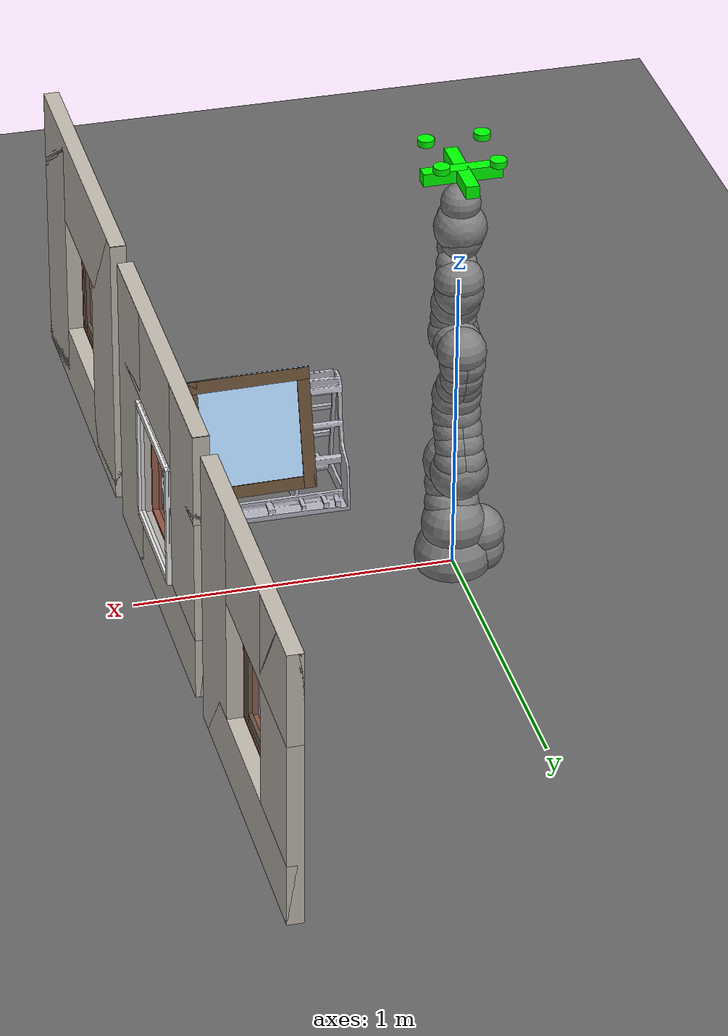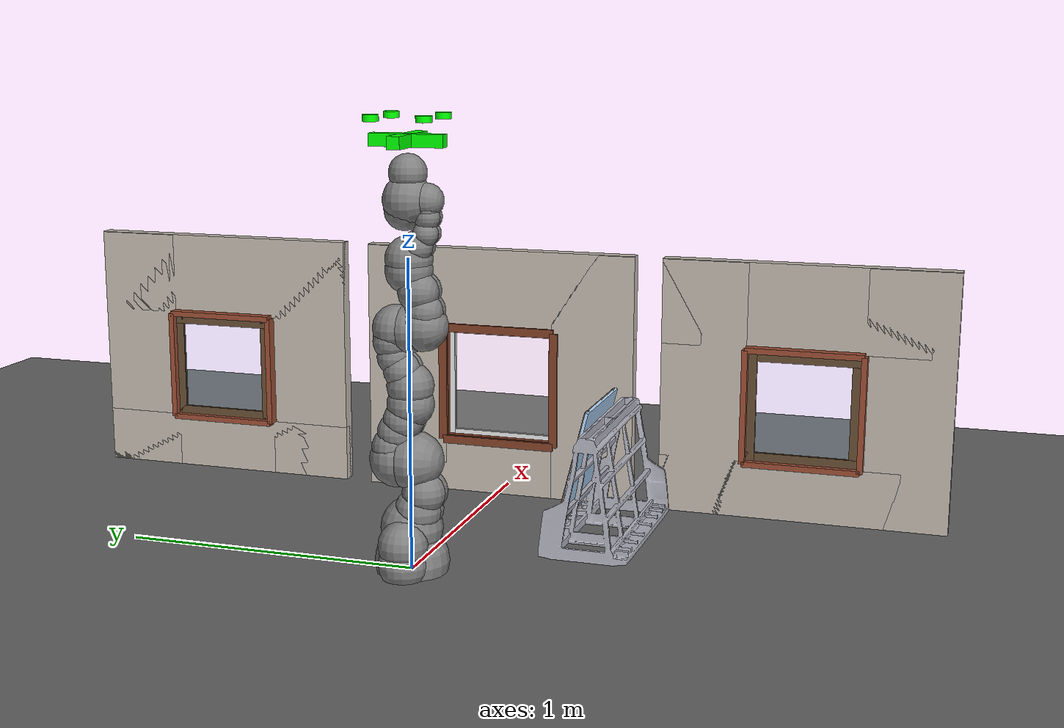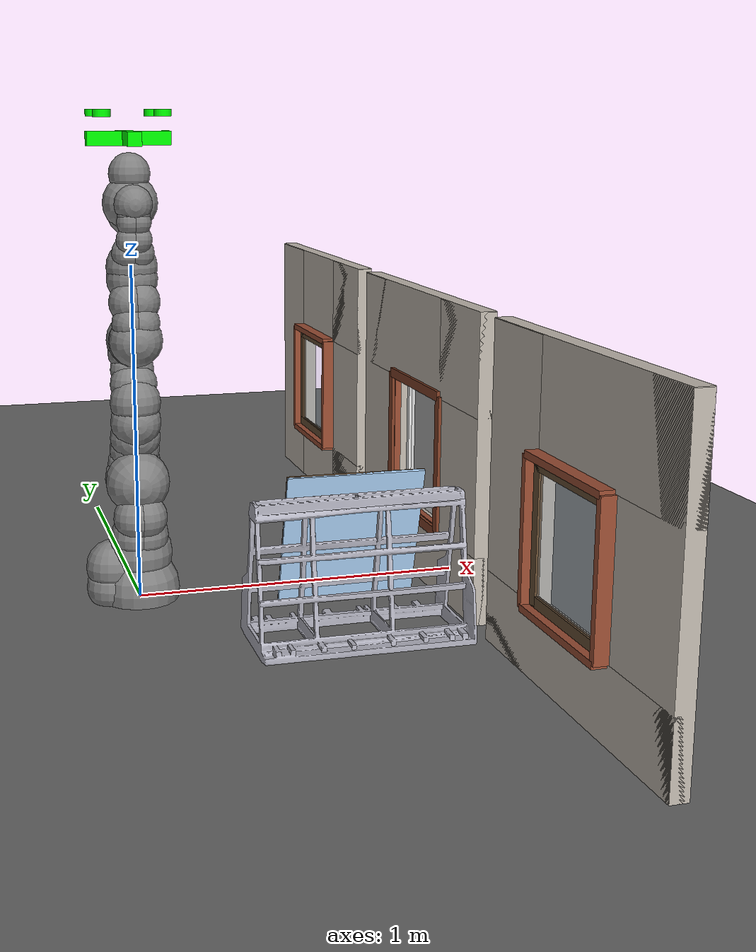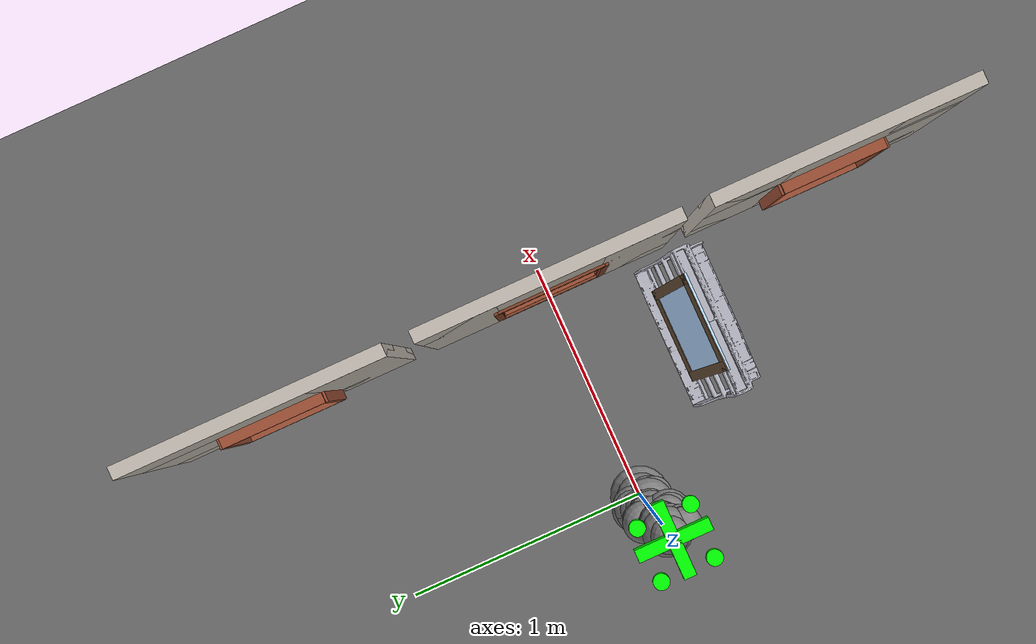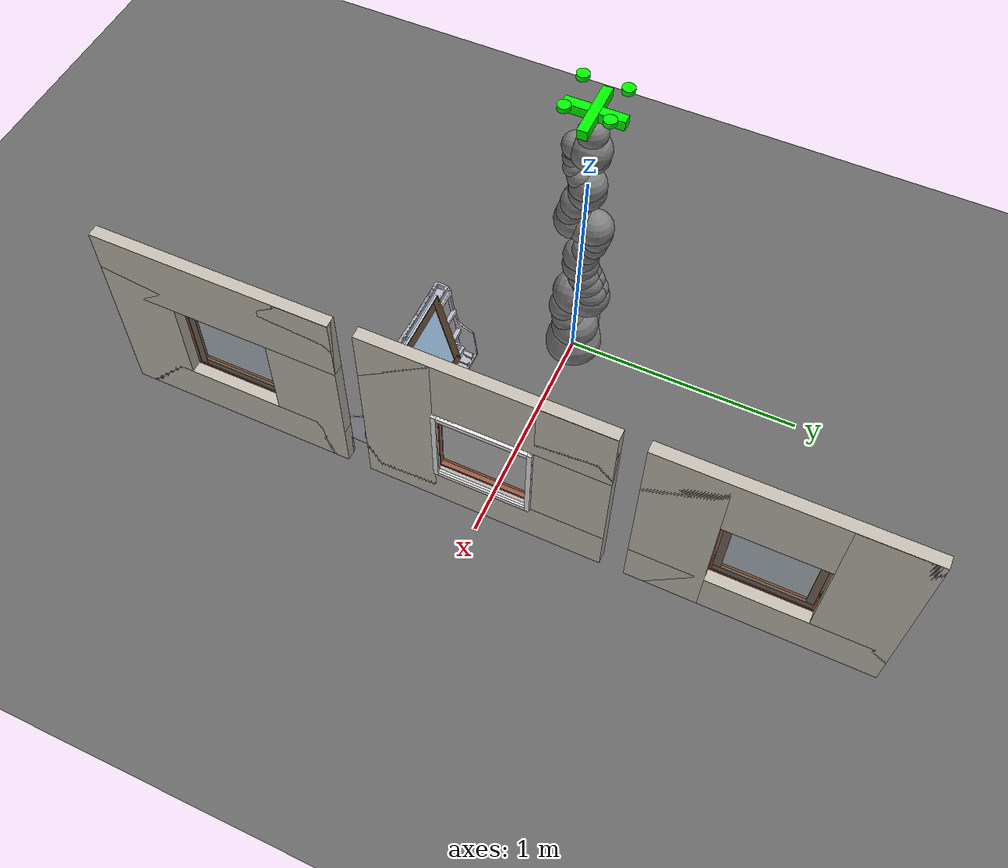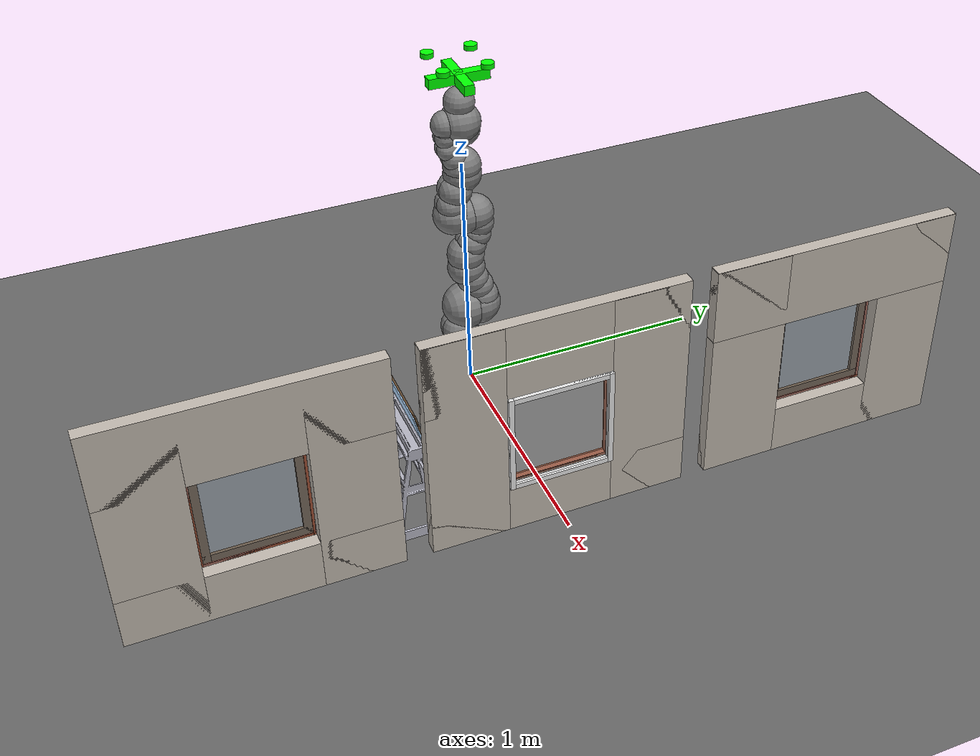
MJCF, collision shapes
<?xml version="1.0" ?>
<mujoco model="kuka_window_assembly_scene_full_ood">
    <include file="kuka_vacuum.xml"/>
    <compiler texturedir="images"/>
    <option timestep=".001" noslip_iterations="50" noslip_tolerance="0" impratio="100" cone="elliptic"/>
    <statistic center="0.4 0 0.4" extent=".8"/>
    <visual>
      <headlight diffuse=".4 .4 .4" ambient=".5 .5 .5"/>
      <global azimuth="160" elevation="-20" offheight="512" offwidth="512"/>
      <quality offsamples="8"/>
    </visual>
    <asset>
      <mesh name="wall_with_hole" file="meshes/wall_with_hole_thick.obj" scale="0.801587 1 0.801587"/>
      <mesh name="glass_rack" file="meshes/A_frame_glass_rack/object_1.obj" scale="0.6 0.6 0.6"/>
      <texture name="concrete_tex" type="2d" file="concrete.png"/>
      <texture name="skybox" type="skybox" gridsize="3 4" gridlayout=".U..LFRB.D.." file="dawn.png"/>
      <texture name="grid" type="2d" builtin="checker" width="512" height="512" rgb1=".1 .2 .3" rgb2=".2 .3 .4"/>
      <texture name="concrete_floor_tex" type="2d" file="white_marble_tile2.png"/>
      <material name="concrete_mat" texture="concrete_tex" texrepeat="3 3" texuniform="false" reflectance="0.05" shininess="0.05" specular="0.05"/>
      <material name="grid" texture="grid" texrepeat="2 2" texuniform="true" reflectance="0"/>
      <material name="concrete_floor_mat" texture="concrete_floor_tex" texrepeat="4 4" texuniform="true" reflectance="0" shininess="0" specular="0"/>
      <material name="glass_mat" rgba="0.7 0.85 1.0 0.2" shininess="0.2" reflectance="0.1" specular="0.15"/>
      <material name="frame_mat" rgba="0.2 0.2 0.2 1" shininess="0.1"/>
      <material name="window_frame_mat" rgba="0.6 0.3 0.2 1" shininess="0.3" reflectance="0.2"/>
      <material name="rack_mat" rgba="1.0 1.0 1.0 1" shininess="0.1" specular="0.05" reflectance="0"/>
      <material name="metal_mat" rgba="0.7 0.7 0.75 1" shininess="0.8" specular="0.3" reflectance="0.2"/>
    </asset>
    <keyframe>
        <key name="home" qpos="0 0.785398 0 -1.5708 0 0.785398 0 0.514000 -0.432000 0.273000 0.786852 -0.617125 0.003272 0.003239"/>
    </keyframe>

    <worldbody>
      <camera name="front" pos="-0.130 0.970 0.630" quat="0.283195 0.191929 -0.548091 -0.763256" fovy="50"/>
      <camera name="track" pos="-0.130 -0.800 0.900" quat="0.832262 0.448649 -0.162592 -0.282167" fovy="50"/>
      <light pos="0 0 3" dir="0 0 -1" diffuse="1 1 1" specular=".3 .3 .3"/>
      <light pos="0 -.5 .4" mode="targetbodycom" target="window_body" diffuse=".8 .8 .8" specular=".3 .3 .3"/>
      <geom name="floor" size="3 3 0.01" type="plane" material="concrete_floor_mat"
            rgba="0.4 0.4 0.4 1"
            contype="1" conaffinity="1"
            solimp="0.99 0.99 0.01" solref="0.002 1" friction="5 5 5"/>

      <body name="window_body" pos="0.532000 -0.432000 0.273000" quat="0.786852 -0.617125 0.003272 0.003239">
        <freejoint name="window_joint"/>
        <geom name="window_collision" type="box" size="0.197500 0.197500 0.005" mass="0.063677" material="glass_mat"
              contype="1" conaffinity="1" priority="1"
              solimp="0.9 0.95 0.001" solref="0.01 1" friction="5 5 5" condim="6"/>
        <geom name="visual_frame_top" type="box" size="0.197500 0.02 0.004" pos="0 0.177500 0.004" material="frame_mat" rgba="0.4 0.3 0.2 1" contype="0" conaffinity="0"/>
        <geom name="visual_frame_bottom" type="box" size="0.197500 0.02 0.004" pos="0 -0.177500 0.004" material="frame_mat" rgba="0.4 0.3 0.2 1" contype="0" conaffinity="0"/>
        <geom name="visual_frame_left" type="box" size="0.02 0.197500 0.004" pos="-0.177500 0 0.004" material="frame_mat" rgba="0.4 0.3 0.2 1" contype="0" conaffinity="0"/>
        <geom name="visual_frame_right" type="box" size="0.02 0.197500 0.004" pos="0.177500 0 0.004" material="frame_mat" rgba="0.4 0.3 0.2 1" contype="0" conaffinity="0"/>
        <geom name="visual_glass" type="box" size="0.157500 0.157500 0.001" pos="0 0 0.003" material="glass_mat" rgba="0.7 0.85 1.0 0.2" contype="0" conaffinity="0"/>
        <site name="window_grasp_site" pos="0 0 0" size="0.02" rgba="1 0 0 0"/>
      </body>

      <body name="facade_wall" pos="0.9 0 0.4" quat="0.707 0 0 0.707">

        <geom name="wall_left" type="box" size="0.15 0.025 0.5" pos="-0.352000 0 0" material="concrete_mat"
              contype="1" conaffinity="1"
              solimp="0.9 0.95 0.001" solref="0.002 1" friction="5 5 5" condim="6" />
        <geom name="wall_right" type="box" size="0.15 0.025 0.5" pos="0.352000 0 0" material="concrete_mat"
              contype="1" conaffinity="1"
              solimp="0.9 0.95 0.001" solref="0.002 1" friction="5 5 5" condim="6" />
        <geom name="wall_top" type="box" size="0.502000 0.025 0.15" pos="0 0 0.352000" material="concrete_mat"
              contype="1" conaffinity="1"
              solimp="0.9 0.95 0.001" solref="0.002 1" friction="5 5 5" condim="6" />
        <geom name="wall_bottom" type="box" size="0.502000 0.025 0.15" pos="0 0 -0.352000" material="concrete_mat"
              contype="1" conaffinity="1"
              solimp="0.9 0.95 0.001" solref="0.002 1" friction="5 5 5" condim="6" />
        <geom name="wall_visual_mesh" type="mesh" mesh="wall_with_hole"
          pos="0 0.026000 0"
          material="concrete_mat"
          contype="0" conaffinity="0" density="0"/>

        <geom name="wall_back_left" type="box" size="0.01 0.01 0.202000" pos="-0.192000 -0.03 0" material="frame_mat" rgba="0.9 0.9 0.9 0.1"
              contype="1" conaffinity="1"
              solimp="0.9 0.95 0.001" solref="0.002 1" friction="5 5 5" condim="6"/>
        <geom name="wall_back_right" type="box" size="0.01 0.01 0.202000" pos="0.192000 -0.03 0" material="frame_mat" rgba="0.9 0.9 0.9 0.1"
              contype="1" conaffinity="1"
              solimp="0.9 0.95 0.001" solref="0.002 1" friction="5 5 5" condim="6"/>
        <geom name="wall_back_top" type="box" size="0.182000 0.01 0.01" pos="0 -0.03 0.192000" material="frame_mat" rgba="0.9 0.9 0.9 0.1"
              contype="1" conaffinity="1"
              solimp="0.9 0.95 0.001" solref="0.002 1" friction="5 5 5" condim="6"/>
        <geom name="wall_back_bottom" type="box" size="0.182000 0.01 0.01" pos="0 -0.03 -0.192000" material="frame_mat" rgba="0.9 0.9 0.9 0.1"
              contype="1" conaffinity="1"
              solimp="0.9 0.95 0.001" solref="0.002 1" friction="5 5 5" condim="6"/>
        <geom name="wall_back_visual" type="box" size="0.202000 0.001 0.202000" pos="0 -0.03 0" material="frame_mat" rgba="0.9 0.9 0.9 0.05"
              contype="0" conaffinity="0"/>

        <geom name="frame_left" type="box" size="0.01 0.01 0.202000" pos="-0.202000 0.015 0" material="window_frame_mat" rgba="0.6 0.3 0.2 1" contype="0" conaffinity="0"/>
        <geom name="frame_right" type="box" size="0.01 0.01 0.202000" pos="0.202000 0.015 0" material="window_frame_mat" rgba="0.6 0.3 0.2 1" contype="0" conaffinity="0"/>
        <geom name="frame_top" type="box" size="0.202000 0.01 0.01" pos="0 0.015 0.202000" material="window_frame_mat" rgba="0.6 0.3 0.2 1" contype="0" conaffinity="0"/>
        <geom name="frame_bottom" type="box" size="0.202000 0.01 0.01" pos="0 0.015 -0.202000" material="window_frame_mat" rgba="0.6 0.3 0.2 1" contype="0" conaffinity="0"/>

        <geom name="frame_outer_left" type="box" size="0.015 0.015 0.210000" pos="-0.210000 0.02 0" material="window_frame_mat" rgba="0.5 0.25 0.15 1" contype="0" conaffinity="0"/>
        <geom name="frame_outer_right" type="box" size="0.015 0.015 0.210000" pos="0.210000 0.02 0" material="window_frame_mat" rgba="0.5 0.25 0.15 1" contype="0" conaffinity="0"/>
        <geom name="frame_outer_top" type="box" size="0.210000 0.015 0.015" pos="0 0.02 0.210000" material="window_frame_mat" rgba="0.5 0.25 0.15 1" contype="0" conaffinity="0"/>
        <geom name="frame_outer_bottom" type="box" size="0.210000 0.015 0.015" pos="0 0.02 -0.210000" material="window_frame_mat" rgba="0.5 0.25 0.15 1" contype="0" conaffinity="0"/>

        <site name="target_site" pos="0 0.02 0" size="0.01" rgba="0 1 0 0" type="sphere"/>
      </body>

      <body name="left_wall" pos="0.9 -1.104 0.4" quat="0.707 0 0 0.707">

        <geom name="left_wall_left" type="box" size="0.15 0.025 0.5" pos="-0.352000 0 0" material="concrete_mat" />
        <geom name="left_wall_right" type="box" size="0.15 0.025 0.5" pos="0.352000 0 0" material="concrete_mat" />
        <geom name="left_wall_top" type="box" size="0.502000 0.025 0.15" pos="0 0 0.352000" material="concrete_mat" />
        <geom name="left_wall_bottom" type="box" size="0.502000 0.025 0.15" pos="0 0 -0.352000" material="concrete_mat" />
        <geom name="left_wall_visual_mesh" type="mesh" mesh="wall_with_hole"
          pos="0 0.026000 0"
          material="concrete_mat"
          contype="0" conaffinity="0" density="0"/>

        <geom name="left_fin_glass" type="box" size="0.202000 0.005 0.202000" pos="0 0.03 0" material="glass_mat" contype="0" conaffinity="0"/>
        <geom name="left_fin_inner_frame_T" type="box" size="0.202000 0.006 0.02" pos="0 0.035 0.182000" material="frame_mat" rgba="0.4 0.3 0.2 1" contype="0" conaffinity="0"/>
        <geom name="left_fin_inner_frame_B" type="box" size="0.202000 0.006 0.02" pos="0 0.035 -0.182000" material="frame_mat" rgba="0.4 0.3 0.2 1" contype="0" conaffinity="0"/>
        <geom name="left_fin_inner_frame_L" type="box" size="0.02 0.006 0.202000" pos="-0.182000 0.035 0" material="frame_mat" rgba="0.4 0.3 0.2 1" contype="0" conaffinity="0"/>
        <geom name="left_fin_inner_frame_R" type="box" size="0.02 0.006 0.202000" pos="0.182000 0.035 0" material="frame_mat" rgba="0.4 0.3 0.2 1" contype="0" conaffinity="0"/>
        <geom name="l_fin_f_L" type="box" size="0.01 0.02 0.202000" pos="-0.202000 0.045 0" material="window_frame_mat" contype="0" conaffinity="0"/>
        <geom name="l_fin_f_R" type="box" size="0.01 0.02 0.202000" pos="0.202000 0.045 0" material="window_frame_mat" contype="0" conaffinity="0"/>
        <geom name="l_fin_f_T" type="box" size="0.202000 0.02 0.01" pos="0 0.045 0.202000" material="window_frame_mat" contype="0" conaffinity="0"/>
        <geom name="l_fin_f_B" type="box" size="0.202000 0.02 0.01" pos="0 0.045 -0.202000" material="window_frame_mat" contype="0" conaffinity="0"/>

      </body>

      <body name="right_wall" pos="0.9 1.104 0.4" quat="0.707 0 0 0.707">

        <geom name="right_wall_left" type="box" size="0.15 0.025 0.5" pos="-0.352000 0 0" material="concrete_mat" />
        <geom name="right_wall_right" type="box" size="0.15 0.025 0.5" pos="0.352000 0 0" material="concrete_mat" />
        <geom name="right_wall_top" type="box" size="0.502000 0.025 0.15" pos="0 0 0.352000" material="concrete_mat" />
        <geom name="right_wall_bottom" type="box" size="0.502000 0.025 0.15" pos="0 0 -0.352000" material="concrete_mat" />
        <geom name="right_wall_visual_mesh" type="mesh" mesh="wall_with_hole"
          pos="0 0.026000 0"
          material="concrete_mat"
          contype="0" conaffinity="0" density="0"/>

        <geom name="right_fin_glass" type="box" size="0.202000 0.005 0.202000" pos="0 0.03 0" material="glass_mat" contype="0" conaffinity="0"/>
        <geom name="right_fin_inner_frame_T" type="box" size="0.202000 0.006 0.02" pos="0 0.035 0.182000" material="frame_mat" rgba="0.4 0.3 0.2 1" contype="0" conaffinity="0"/>
        <geom name="right_fin_inner_frame_B" type="box" size="0.202000 0.006 0.02" pos="0 0.035 -0.182000" material="frame_mat" rgba="0.4 0.3 0.2 1" contype="0" conaffinity="0"/>
        <geom name="right_fin_inner_frame_L" type="box" size="0.02 0.006 0.202000" pos="-0.182000 0.035 0" material="frame_mat" rgba="0.4 0.3 0.2 1" contype="0" conaffinity="0"/>
        <geom name="right_fin_inner_frame_R" type="box" size="0.02 0.006 0.202000" pos="0.182000 0.035 0" material="frame_mat" rgba="0.4 0.3 0.2 1" contype="0" conaffinity="0"/>
        <geom name="r_fin_f_L" type="box" size="0.01 0.02 0.202000" pos="-0.202000 0.045 0" material="window_frame_mat" contype="0" conaffinity="0"/>
        <geom name="r_fin_f_R" type="box" size="0.01 0.02 0.202000" pos="0.202000 0.045 0" material="window_frame_mat" contype="0" conaffinity="0"/>
        <geom name="r_fin_f_T" type="box" size="0.202000 0.02 0.01" pos="0 0.045 0.202000" material="window_frame_mat" contype="0" conaffinity="0"/>
        <geom name="r_fin_f_B" type="box" size="0.202000 0.02 0.01" pos="0 0.045 -0.202000" material="window_frame_mat" contype="0" conaffinity="0"/>

      </body>

      <body name="target" pos=".15 0 .5" quat="0 1 0 0" mocap="true">
        <geom name="target" type="box" size=".03 .03 .03" contype="0" conaffinity="0" rgba=".6 .3 .3 0"/>
      </body>
      <body name="glass_rack" pos="0.53 -0.5 0.2" quat="1 0 0 0">
        <geom name="glass_rack_visual" type="mesh" mesh="glass_rack"
              material="rack_mat"
              contype="0" conaffinity="0"/>
        <geom name="glass_rack_collision" type="mesh" mesh="glass_rack"
              material="metal_mat"
              contype="1" conaffinity="1"
              solimp="0.9 0.95 0.001" solref="0.002 1" friction="5 5 5" condim="6"/>
      </body>
    </worldbody>

    <contact>
      <exclude body1="window_body" body2="glass_rack"/>
    </contact>
    <sensor>
      <framepos name="window_pos" objtype="body" objname="window_body"/>
      <framequat name="window_quat" objtype="body" objname="window_body"/>
      <framepos name="target_pos" objtype="site" objname="target_site"/>
    </sensor>
</mujoco>

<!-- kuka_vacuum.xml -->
<mujoco model="kuka_vacuum">
  <compiler angle="radian" meshdir="kuka_iiwa_14/assets" autolimits="true"/>

  <option integrator="implicitfast"/>

  <default>
    <default class="iiwa">
      <material specular="0.5" shininess="0.25"/>
      <joint axis="0 0 1" armature="0.1" damping="1"/>
      <default class="joint1">
        <joint range="-2.96706 2.96706"/>
        <default class="joint2">
          <joint range="-2.0944 2.0944"/>
        </default>
      </default>
      <default class="joint3">
        <joint range="-3.05433 3.05433"/>
      </default>
      <default class="visual">
        <geom type="mesh" contype="0" conaffinity="0" group="2" material="gray"/>
      </default>
      <default class="collision">
        <geom group="3"/>
      </default>
      <site size="0.001" rgba="1 0 0 1" group="4"/>
    </default>

    <default class="vacuum_gripper">
      <default class="vacuum_gripper/visual">
         <geom contype="0" conaffinity="0" group="2"/>
      </default>
      <default class="vacuum_gripper/collision">
            <geom group="3" rgba="0 1 0 0.3" contype="1" conaffinity="1"
              condim="6" friction="10 10 10" margin="0.002"
              solimp="0.99 0.99 0.01" solref="0.004 1"/>
      </default>
    </default>
  </default>

  <asset>
    <material class="iiwa" name="gray" rgba="0.4 0.4 0.4 1"/>
    <material class="iiwa" name="light_gray" rgba="0.6 0.6 0.6 1"/>
    <material class="iiwa" name="black" rgba="0 0 0 1"/>
    <material class="iiwa" name="orange" rgba="1 0.423529 0.0392157 1"/>

    <material name="pp_black" rgba="0.1 0.1 0.1 1" specular="0.5" shininess="0.2"/>
    <material name="pp_green" rgba="0.0 0.6 0.3 1" specular="0.2" shininess="0.1"/>
    <material name="pp_yellow" rgba="0.95 0.8 0.1 1" specular="0.1" shininess="0.1"/>

    <mesh file="link_0.obj"/>
    <mesh file="link_1.obj"/>
    <mesh file="link_2_orange.obj"/>
    <mesh file="link_2_grey.obj"/>
    <mesh file="link_3.obj"/>
    <mesh file="band.obj"/>
    <mesh file="kuka.obj"/>
    <mesh file="link_4_orange.obj"/>
    <mesh file="link_4_grey.obj"/>
    <mesh file="link_5.obj"/>
    <mesh file="link_6_orange.obj"/>
    <mesh file="link_6_grey.obj"/>
    <mesh file="link_7.obj"/>

    <!-- PowerPick vacuum gripper meshes -->
    <!-- Note: meshdir is set to kuka_iiwa_14/assets, so paths are relative to that directory -->
    <!-- From kuka_iiwa_14/assets to assets/powerpick/meshes/pp30/ is ../../powerpick/meshes/pp30/ -->
    <mesh name="pp_frame" file="../../powerpick/meshes/pp30/frame_reduced.stl" scale="0.001 0.001 0.001"/>
    <mesh name="pp_bellows" file="../../powerpick/meshes/pp30/bellows.stl" scale="0.001 0.001 0.001"/>
    <mesh name="pp_lips" file="../../powerpick/meshes/pp30/lips.stl" scale="0.001 0.001 0.001"/>
  </asset>

  <worldbody>
    <light name="top" pos="0 0 2" mode="trackcom"/>
    <body name="base" childclass="iiwa">
      <inertial mass="5" pos="-0.1 0 0.07" diaginertia="0.05 0.06 0.03"/>
      <geom class="visual" mesh="link_0"/>
      <geom class="collision" size="0.12" pos="0 0 0.03"/>
      <geom class="collision" size="0.08" pos="-0.08 0 0.103"/>
      <geom class="collision" size="0.08" pos="-0.08 0 0.04"/>
      <geom class="collision" size="0.1" pos="0 0 0.14"/>
      <body name="link1" pos="0 0 0.1575">
        <inertial mass="5.76" pos="0 -0.03 0.12" diaginertia="0.0333 0.033 0.0123"/>
        <joint name="joint1" class="joint1"/>
        <site name="joint1"/>
        <geom class="visual" mesh="link_1"/>
        <geom class="collision" size="0.08" pos="0 0 -0.0005"/>
        <geom class="collision" size="0.075" pos="0.01 -0.025 0.0425"/>
        <geom class="collision" size="0.075" pos="-0.01 -0.025 0.0425"/>
        <geom class="collision" size="0.07" pos="0.01 -0.045 0.1025"/>
        <geom class="collision" size="0.07" pos="-0.01 -0.045 0.1025"/>
        <body name="link2" pos="0 0 0.2025" quat="0 0 1 1">
          <inertial mass="6.35" pos="0.0003 0.059 0.042" diaginertia="0.0305 0.0304 0.011" quat="0 0 1 1"/>
          <joint name="joint2" class="joint2"/>
          <site name="joint2"/>
          <geom class="visual" material="orange" mesh="link_2_orange"/>
          <geom class="visual" mesh="link_2_grey"/>
          <geom class="collision" size="0.095" pos="0 0 -0.01"/>
          <geom class="collision" size="0.09" pos="0 0 0.045"/>
          <geom class="collision" size="0.07" pos="-0.01 0.04 0.054"/>
          <geom class="collision" size="0.065" pos="-0.01 0.09 0.04"/>
          <geom class="collision" size="0.065" pos="-0.01 0.13 0.02"/>
          <geom class="collision" size="0.07" pos="0.01 0.04 0.054"/>
          <geom class="collision" size="0.065" pos="0.01 0.09 0.04"/>
          <geom class="collision" size="0.065" pos="0.01 0.13 0.02"/>
          <geom class="collision" size="0.075" pos="0 0.18 0"/>
          <body name="link3" pos="0 0.2045 0" quat="0 0 1 1">
            <inertial mass="3.5" pos="0 0.03 0.13" diaginertia="0.025 0.0238 0.0076"/>
            <joint name="joint3" class="joint1"/>
            <site name="joint3"/>
            <geom class="visual" mesh="link_3"/>
            <geom class="visual" material="light_gray" mesh="band"/>
            <geom class="visual" material="black" mesh="kuka"/>
            <geom class="collision" size="0.075" pos="0 0 0.0355"/>
            <geom class="collision" size="0.06" pos="0.01 0.023 0.0855"/>
            <geom class="collision" size="0.055" pos="0.01 0.048 0.1255"/>
            <geom class="collision" size="0.06" pos="0.01 0.056 0.1755"/>
            <geom class="collision" size="0.06" pos="-0.01 0.023 0.0855"/>
            <geom class="collision" size="0.055" pos="-0.01 0.048 0.1255"/>
            <geom class="collision" size="0.06" pos="-0.01 0.056 0.1755"/>
            <geom class="collision" size="0.075" pos="0 0.045 0.2155"/>
            <geom class="collision" size="0.075" pos="0 0 0.2155"/>
            <body name="link4" pos="0 0 0.2155" quat="1 1 0 0">
              <inertial mass="3.5" pos="0 0.067 0.034" diaginertia="0.017 0.0164 0.006" quat="1 1 0 0"/>
              <joint name="joint4" class="joint2"/>
              <site name="joint4"/>
              <geom class="visual" material="orange" mesh="link_4_orange"/>
              <geom class="visual" mesh="link_4_grey"/>
              <geom class="collision" size="0.078" pos="0 0.01 0.046"/>
              <geom class="collision" size="0.06" pos="0.01 0.06 0.052"/>
              <geom class="collision" size="0.065" pos="0.01 0.12 0.034"/>
              <geom class="collision" size="0.06" pos="-0.01 0.06 0.052"/>
              <geom class="collision" size="0.065" pos="-0.01 0.12 0.034"/>
              <geom class="collision" size="0.075" pos="0 0.184 0"/>
              <body name="link5" pos="0 0.1845 0" quat="0 0 1 1">
                <inertial mass="3.5" pos="0.0001 0.021 0.076" diaginertia="0.01 0.0087 0.00449"/>
                <joint name="joint5" class="joint1"/>
                <site name="joint5"/>
                <geom class="visual" mesh="link_5"/>
                <geom class="visual" material="light_gray" mesh="band"/>
                <geom class="visual" material="black" mesh="kuka"/>
                <geom class="collision" size="0.075" pos="0 0 0.0335"/>
                <geom class="collision" size="0.05" pos="-0.012 0.031 0.0755"/>
                <geom class="collision" size="0.05" pos="0.012 0.031 0.0755"/>
                <geom class="collision" size="0.04" pos="-0.012 0.06 0.1155"/>
                <geom class="collision" size="0.04" pos="0.012 0.06 0.1155"/>
                <geom class="collision" size="0.04" pos="-0.01 0.065 0.1655"/>
                <geom class="collision" size="0.04" pos="0.01 0.065 0.1655"/>
                <geom class="collision" size="0.035" pos="-0.012 0.065 0.1855"/>
                <geom class="collision" size="0.035" pos="0.012 0.065 0.1855"/>
                <body name="link6" pos="0 0 0.2155" quat="1 1 0 0">
                  <inertial mass="1.8" pos="0 0.0006 0.0004" diaginertia="0.0049 0.0047 0.0036" quat="1 1 0 0"/>
                  <joint name="joint6" class="joint2"/>
                  <site name="joint6"/>
                  <geom class="visual" material="orange" mesh="link_6_orange"/>
                  <geom class="visual" mesh="link_6_grey"/>
                  <geom class="collision" size="0.055" pos="0 0 -0.059"/>
                  <geom class="collision" size="0.065" pos="0 -0.03 0.011"/>
                  <geom class="collision" size="0.08"/>
                  <body name="link7" pos="0 0.081 0" quat="0 0 1 1">
                    <inertial mass="1.2" pos="0 0 0.02" diaginertia="0.001 0.001 0.001"/>
                    <joint name="joint7" class="joint3" range="0 0" damping="1000"/>
                    <site name="joint7"/>
                    <geom class="visual" mesh="link_7"/>
                    <geom class="collision" size="0.06" pos="0 0 0.001"/>
                    <site name="attachment_site" pos="0 0 0.045" size="0.001" rgba="1 0 0 0"/>
                    <!-- Wrist camera for visual feedback -->
                    <camera name="handcam_depth" pos="-0.05 0 0" fovy="62" quat="0 1 -1 0"/>
                    <camera name="handcam_rgb" pos=" -0.140 0.005 -0.010" fovy="82" quat="0.049325 0.705384 -0.705384 -0.049325"/>

                    <!-- Vacuum gripper attached to link7 -->
                    <body name="vacuum_gripper" pos="0 0 0.15" quat="0 1 0 0" childclass="vacuum_gripper">
                      <inertial mass="0.1" pos="0 0 0.05" diaginertia="0.005 0.005 0.005"/>

                      <geom type="mesh" mesh="pp_frame" material="pp_black"
                            pos="-0.135010 -0.792761 -0.235147" quat="1 0 0 0"
                            contype="0" conaffinity="0" group="2"/>
                      <geom type="mesh" mesh="pp_bellows" material="pp_green"
                            pos="-0.135010 -0.792761 -0.235147" quat="1 0 0 0"
                            contype="0" conaffinity="0" group="2"/>
                      <geom type="mesh" mesh="pp_lips" material="pp_yellow"
                            pos="-0.135010 -0.792761 -0.235147" quat="1 0 0 0"
                            contype="0" conaffinity="0" group="2"/>

                      <geom name="col_frame_x" type="box" size="0.12 0.02 0.02" pos="0 0 0.05"
                            group="3" rgba="0 1 0 0.3" contype="1" conaffinity="1"/>
                      <geom name="col_frame_y" type="box" size="0.02 0.12 0.02" pos="0 0 0.05"
                            group="3" rgba="0 1 0 0.3" contype="1" conaffinity="1"/>

                      <geom name="col_cup_1" type="cylinder" size="0.025 0.01" pos="0.085 0.085 -0.020" class="vacuum_gripper/collision"/>
                      <geom name="col_cup_2" type="cylinder" size="0.025 0.01" pos="0.085 -0.085 -0.020" class="vacuum_gripper/collision"/>
                      <geom name="col_cup_3" type="cylinder" size="0.025 0.01" pos="-0.085 0.085 -0.020" class="vacuum_gripper/collision"/>
                      <geom name="col_cup_4" type="cylinder" size="0.025 0.01" pos="-0.085 -0.085 -0.020" class="vacuum_gripper/collision"/>

                      <site name="pinch" pos="0 0 -0.020" size="0.003" rgba="1 0 0 0"/>
                      <!-- Docking site for auto-alignment reference -->
                      <site name="gripper_dock" pos="0 0 0.002" size="0.01" rgba="1 0 0 0" type="sphere" group="4"/>
                    </body>
                  </body>
                </body>
              </body>
            </body>
          </body>
        </body>
      </body>
    </body>
  </worldbody>

  <contact>
    <exclude body1="base" body2="link1"/>
    <exclude body1="base" body2="link2"/>
    <exclude body1="base" body2="link3"/>
    <exclude body1="link1" body2="link3"/>
    <exclude body1="link3" body2="link5"/>
    <exclude body1="link4" body2="link7"/>
    <exclude body1="link5" body2="link7"/>
  </contact>

  <actuator>
    <!-- Convert to motor actuators (like Panda) for better compatibility with opspace controller -->
    <!-- Using reasonable torque limits: larger joints can handle more torque -->
    <motor name="actuator1" joint="joint1" ctrlrange="-87 87"/>
    <motor name="actuator2" joint="joint2" ctrlrange="-87 87"/>
    <motor name="actuator3" joint="joint3" ctrlrange="-87 87"/>
    <motor name="actuator4" joint="joint4" ctrlrange="-87 87"/>
    <motor name="actuator5" joint="joint5" ctrlrange="-12 12"/>
    <motor name="actuator6" joint="joint6" ctrlrange="-12 12"/>
    <motor name="actuator7" joint="joint7" ctrlrange="0 0"/>
    <!-- 增加吸附力：gain从200提高到300，确保更稳定的吸附 -->
    <adhesion name="fingers_actuator" body="vacuum_gripper" ctrlrange="0 1" gain="300"/>
  </actuator>

  <sensor>
    <!-- Joint position sensors (using same naming as Panda for compatibility) -->
    <jointpos name="panda/joint1_pos" joint="joint1"/>
    <jointpos name="panda/joint2_pos" joint="joint2"/>
    <jointpos name="panda/joint3_pos" joint="joint3"/>
    <jointpos name="panda/joint4_pos" joint="joint4"/>
    <jointpos name="panda/joint5_pos" joint="joint5"/>
    <jointpos name="panda/joint6_pos" joint="joint6"/>
    <jointpos name="panda/joint7_pos" joint="joint7"/>
    <jointvel name="panda/joint1_vel" joint="joint1"/>
    <jointvel name="panda/joint2_vel" joint="joint2"/>
    <jointvel name="panda/joint3_vel" joint="joint3"/>
    <jointvel name="panda/joint4_vel" joint="joint4"/>
    <jointvel name="panda/joint5_vel" joint="joint5"/>
    <jointvel name="panda/joint6_vel" joint="joint6"/>
    <jointvel name="panda/joint7_vel" joint="joint7"/>
    <torque name="panda/joint1_torque" site="joint1"/>
    <torque name="panda/joint2_torque" site="joint2"/>
    <torque name="panda/joint3_torque" site="joint3"/>
    <torque name="panda/joint4_torque" site="joint4"/>
    <torque name="panda/joint5_torque" site="joint5"/>
    <torque name="panda/joint6_torque" site="joint6"/>
    <torque name="panda/joint7_torque" site="joint7"/>
    <force name="panda/wrist_force" site="attachment_site"/>
    <!-- End-effector pose sensors (using same naming as Panda for compatibility) -->
    <framepos name="2f85/pinch_pos" objtype="site" objname="pinch"/>
    <framequat name="2f85/pinch_quat" objtype="site" objname="pinch"/>
    <framelinvel name="2f85/pinch_vel" objtype="site" objname="pinch"/>
    <frameangvel name="2f85/pinch_angvel" objtype="site" objname="pinch"/>
  </sensor>
</mujoco>
